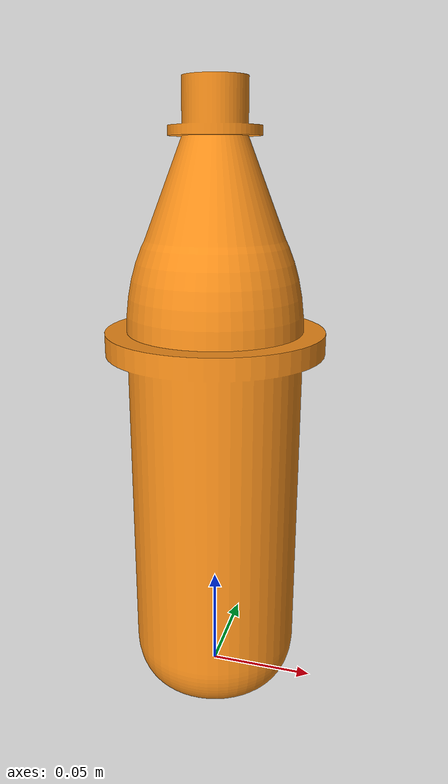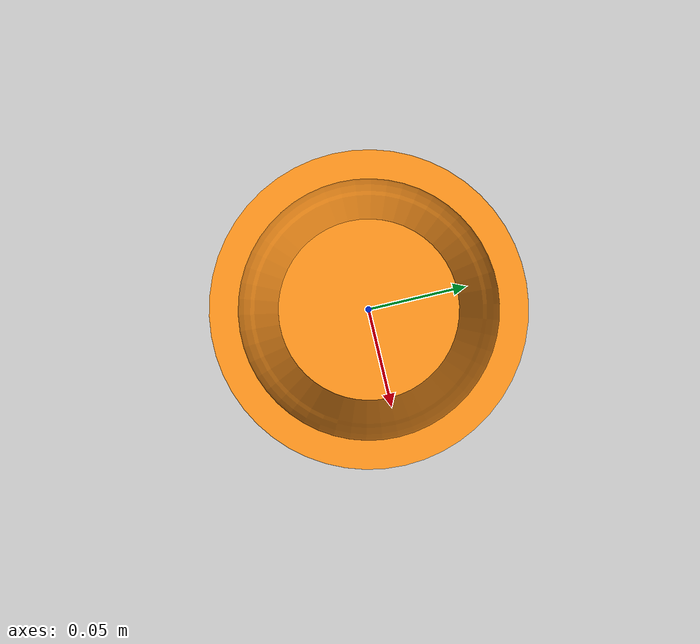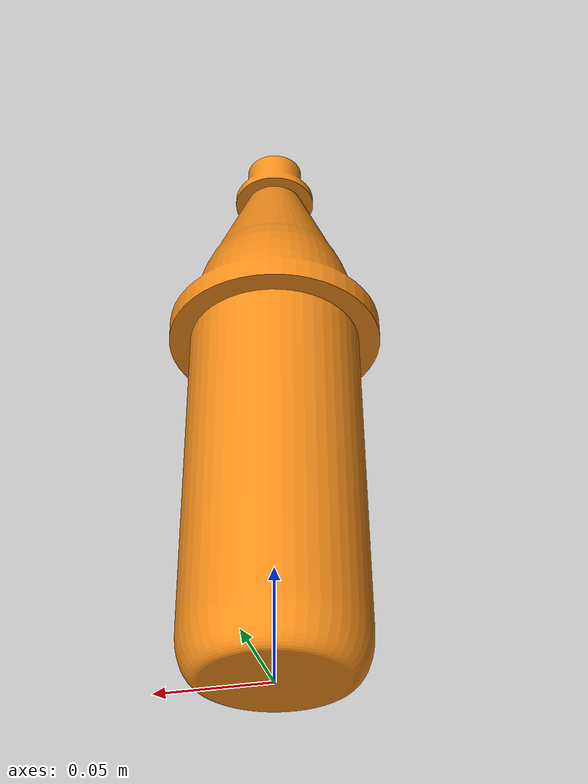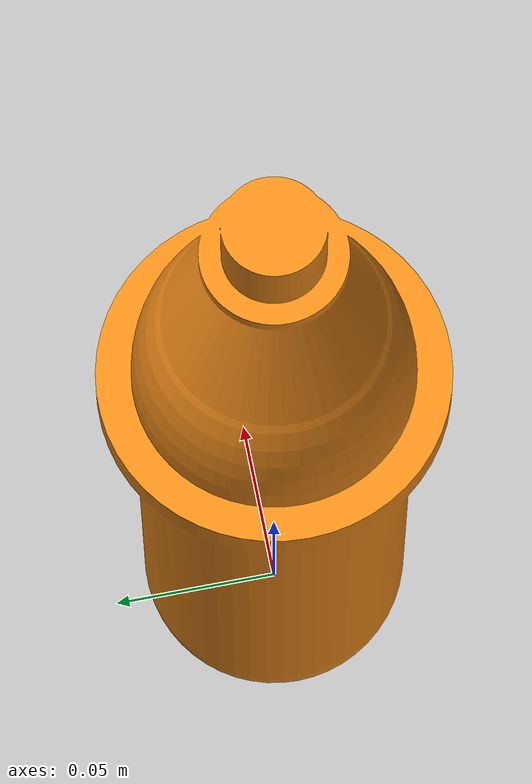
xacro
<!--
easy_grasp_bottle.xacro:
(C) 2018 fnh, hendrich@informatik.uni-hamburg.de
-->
<?xml version="1.0" ?>
<robot xmlns:sensor="http://playerstage.sourceforge.net/gazebo/xmlschema/#sensor"
       xmlns:controller="http://playerstage.sourceforge.net/gazebo/xmlschema/#controller"
       xmlns:interface="http://playerstage.sourceforge.net/gazebo/xmlschema/#interface"
       xmlns:xacro="http://www.ros.org/wiki/xacro"
       name="orange_bottle">

   <xacro:include filename="$(find tiago_bartender_world)/urdf/materials.xacro" />
   <xacro:include filename="$(find tiago_bartender_world)/urdf/easy_grasp_bottle.xacro" />

   <xacro:easy_grasp_bottle
          namespace="" name="orange_bottle" weight="0.2"
          rvizMaterial="orange" gazeboMaterial="Gazebo/Orange" />

</robot>

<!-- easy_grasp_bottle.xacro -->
<robot xmlns:sensor="http://playerstage.sourceforge.net/gazebo/xmlschema/#sensor"
       xmlns:controller="http://playerstage.sourceforge.net/gazebo/xmlschema/#controller"
       xmlns:interface="http://playerstage.sourceforge.net/gazebo/xmlschema/#interface"
       xmlns:xacro="http://www.ros.org/wiki/xacro"
       name="easy_grasp_bottle">

  <xacro:macro name="easy_grasp_bottle"
               params="namespace name weight rvizMaterial gazeboMaterial" >
    <!-- main body with cylinder collision model and bottle mesh for visual -->

    <link name="${namespace}${name}">
      <inertial>
        <!-- center of mass is centered in x and y, and in z is half
             of the bottle height by amount of liquid in the bottle ... -->
        <mass value="${weight}" />
        <origin xyz="0 0 ${0.5*0.25*weight}" rpy="0 0 0" />
        <inertia ixx="0.01" ixy="0" ixz="0" iyy="0.01" iyz="0" izz="0.01" />
      </inertial>
      <collision>
        <!-- Schweppes 1-liter plastic bottle -->
        <origin xyz="0 0 ${0.5*0.284}" rpy="0 0 0" />
        <geometry>
          <cylinder radius="0.04" length="0.284" />
        </geometry>
      </collision>
      <visual>
        <origin xyz="0 0 0" rpy="0 0 0" />
        <geometry>
          <mesh filename="file://$(find tiago_bartender_world)/meshes/easy_grasp_bottle_binary.stl" scale="0.001 0.001 0.001" />
        </geometry>
        <material name="${rvizMaterial}" >
        </material>
      </visual>
    </link>
    <gazebo reference="${namespace}${name}">
      <!-- material/texture definition for Gazebo -->
      <material>${gazeboMaterial}</material> -->
      <turnGravityOff>false</turnGravityOff>
      <selfCollide>false</selfCollide>
      <mu1>0</mu1>
      <mu2>0</mu2>
      <kp>1000000.0</kp>
      <kd>1.0</kd>
    </gazebo>

    <link name="${namespace}${name}_opening" />

    <!-- Schweppes bottle has opening at height 284 mm -->
    <joint name="${namespace}${name}_opening_joint" type="fixed">
      <parent link="${namespace}${name}" />
      <child link="${namespace}${name}_opening" />
      <origin xyz="0 0 0.284" rpy="0 0 0" />
    </joint>

  </xacro:macro>

</robot>
